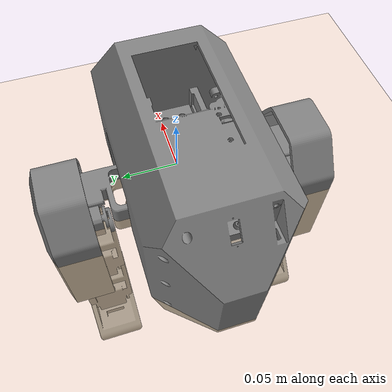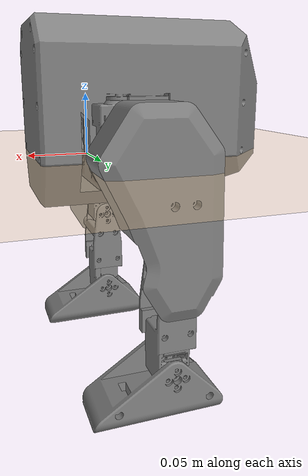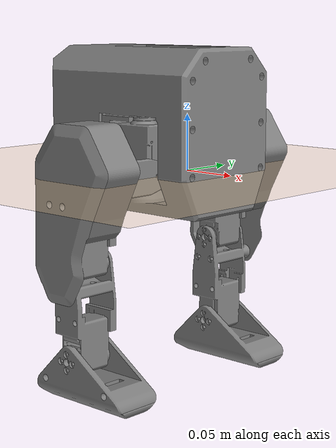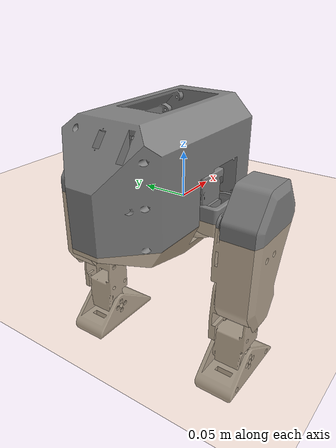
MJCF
<mujoco model="Open_Duck_Mini_Simplified">
    <compiler angle="radian" />
    <asset>
        <mesh name="Base_Link" file="meshes/Base_Link.stl" scale="0.001 0.001 0.001" />
        <mesh name="L_Thigh" file="meshes/L_Thigh.stl" scale="0.001 0.001 0.001" />
        <mesh name="L_Feet" file="meshes/L_Feet.stl" scale="0.001 0.001 0.001" />
        <mesh name="L_Shin" file="meshes/L_Shin.stl" scale="0.001 0.001 0.001" />
        <mesh name="L_hip_Roll2Pitch" file="meshes/L_hip_Roll2Pitch.stl" scale="0.001 0.001 0.001" />
        <mesh name="R_Thigh" file="meshes/R_Thigh.stl" scale="0.001 0.001 0.001" />
        <mesh name="R_hip_Roll2Pitch" file="meshes/R_hip_Roll2Pitch.stl" scale="0.001 0.001 0.001" />
        <mesh name="R_Shin" file="meshes/R_Shin.stl" scale="0.001 0.001 0.001" />
        <mesh name="L_hip_roll" file="meshes/L_hip_roll.stl" scale="0.001 0.001 0.001" />
        <mesh name="R_Feet" file="meshes/R_Feet.stl" scale="0.001 0.001 0.001" />
        <mesh name="R_hip_roll" file="meshes/R_hip_roll.stl" scale="0.001 0.001 0.001" />
    </asset>
    <worldbody>
        <light directional="true" pos="-0.5 0.5 3" dir="0 0 -1" />
        <geom pos="0 0 0" size="1 1 1" type="plane" rgba="1 0.83 0.61 0.5" />
        <body name="Base_Link" pos="0.0 0.0 0.0" euler="-0.0 0.0 -0.0">
            <geom name="Base_Link_geom" type="mesh" mesh="Base_Link" pos="0 0 0" euler="0 0 0" />
            <inertial mass="1.9684302519585641" pos="-0.03415259541905878 -2.340412795917269e-05 0.033010995393600875" fullinertia="0.005121034980046357 0.010241211931603489 0.008460065395761338 -4.522829560938849e-06 0.0003671159147792206 2.7747950485370167e-06" />
            <body name="L_hip_roll" pos="2.997602166487923e-16 -8.881784197001253e-18 -0.00020000000000120366" euler="-0.0 0.0 -0.0">
                <joint name="Base_Link_Revolute-1" type="hinge" axis="0.0 0.0 1.0" pos="-0.019000000000000298 0.03500000000000001 -0.013183999999998796" />
                <geom name="L_hip_roll_geom" type="mesh" mesh="L_hip_roll" pos="0 0 0" euler="0 0 0" />
                <inertial mass="0.1492490667349632" pos="-0.018876389938795472 0.03499999064295626 0.014424147719492868" fullinertia="5.607804841261871e-05 6.0621169396812564e-05 2.33776428469934e-05 -1.5399447721772125e-11 -4.965259153638467e-08 2.6498957935165886e-11" />
                <body name="L_hip_Roll2Pitch" pos="-2.997602166487923e-16 8.881784197001253e-18 0.00020000000000120366" euler="-0.0 0.0 -0.0">
                    <joint name="L_hip_roll_Revolute-4" type="hinge" axis="-1.0 0.0 0.0" pos="-0.0368 0.035 -7.4e-05" />
                    <geom name="L_hip_Roll2Pitch_geom" type="mesh" mesh="L_hip_Roll2Pitch" pos="0 0 0" euler="0 0 0" />
                    <inertial mass="0.10602697627624531" pos="-0.014818719999186636 0.07566773372494888 0.0011484913220371664" fullinertia="5.423033438519949e-05 3.7112765734958914e-05 7.38279563391466e-05 -4.154739662831365e-06 2.752004454686599e-07 -1.7824625751742564e-06" />
                    <body name="L_Thigh" pos="-0.0038000000000000347 5.329070518200751e-17 -1.35229501208034e-14" euler="1.8915628313209683e-13 0.0 -4.433649260499873e-39">
                        <joint name="L_hip_Roll2Pitch_Revolute-5" type="hinge" axis="0.0 1.0 -1.8915628313209683e-13" pos="-0.03125999999999997 0.07204999999999993 -7.400000000010575e-05" />
                        <geom name="L_Thigh_geom" type="mesh" mesh="L_Thigh" pos="0 0 0" euler="0 0 0" />
                        <inertial mass="0.25937750260452785" pos="-0.031032448659312515 0.1035388204097626 -0.021371552287224056" fullinertia="0.0004342529486771238 0.0005023439614216825 0.00021708001902644397 -8.27726818247285e-06 -7.213181055005393e-05 -1.5499027702165054e-05" />
                        <body name="L_Shin" pos="7.989164885202627e-15 0.0002499999999993019 -1.183742391143306e-14" euler="1.1636102701298318e-13 5.159039813671188e-52 2.2063555860711807e-38">
                            <joint name="L_Thigh_Revolute-8" type="hinge" axis="0.0 1.0 -3.0551731014508e-13" pos="-0.03506000000000795 0.0720499999999777 -0.0750739999999967" />
                            <geom name="L_Shin_geom" type="mesh" mesh="L_Shin" pos="0 0 0" euler="0 0 0" />
                            <inertial mass="0.0879638629775456" pos="-0.035062747188262 0.0903855262511664 -0.11582420003230887" fullinertia="7.936709900427646e-05 6.174524754732795e-05 3.072522125902017e-05 8.704058561309926e-09 1.1490857693420855e-08 -2.0329438509603343e-06" />
                            <body name="L_Feet" pos="8.024692021990632e-15 4.99999999892431e-05 -1.3089262203489816e-14" euler="1.1635137298073584e-13 -2.0512638384567958e-51 1.6029359342526113e-38">
                                <joint name="L_Shin_Revolute-10" type="hinge" axis="0.0 1.0 -4.2186868312581586e-13" pos="-0.03506000000001598 0.07224999999994501 -0.1573739999999921" />
                                <geom name="L_Feet_geom" type="mesh" mesh="L_Feet" pos="0 0 0" euler="0 0 0" />
                                <inertial mass="0.26831438389665163" pos="-0.024065628437512216 0.0908422823263262 -0.18097719336339996" fullinertia="7.498489913570529e-05 0.000221367829430008 0.00024945365153443747 -2.0601914103554346e-07 6.406580974771667e-06 7.343370472097901e-07" />
                            </body>
                        </body>
                    </body>
                </body>
            </body>
            <body name="R_hip_roll" pos="2.997602166487923e-16 0.0 -0.00020000000000120366" euler="-0.0 0.0 -0.0">
                <joint name="Base_Link_Revolute-2" type="hinge" axis="0.0 0.0 1.0" pos="-0.019000000000000298 -0.035 -0.013183999999998796" />
                <geom name="R_hip_roll_geom" type="mesh" mesh="R_hip_roll" pos="0 0 0" euler="0 0 0" />
                <inertial mass="0.1492490671539157" pos="-0.018876389988406708 -0.034999973867759014 0.01442414774490302" fullinertia="5.607804847161633e-05 6.06211695731254e-05 2.337764299167476e-05 5.642952350239181e-11 -4.9652523698044476e-08 -3.080540382787052e-11" />
                <body name="R_hip_Roll2Pitch" pos="-2.997602166487923e-16 0.0 0.00020000000000120366" euler="-0.0 0.0 -0.0">
                    <joint name="R_hip_roll_Revolute-3" type="hinge" axis="-1.0 0.0 0.0" pos="-0.0368 -0.035 -7.4e-05" />
                    <geom name="R_hip_Roll2Pitch_geom" type="mesh" mesh="R_hip_Roll2Pitch" pos="0 0 0" euler="0 0 0" />
                    <inertial mass="0.1060269762762521" pos="-0.014818719999185883 -0.07566773372495088 0.0011484913220383955" fullinertia="5.423033438520307e-05 3.7112765734963725e-05 7.382795633916351e-05 4.154739662834441e-06 2.7520044546570946e-07 1.7824625751777682e-06" />
                    <body name="R_Thigh" pos="0.0 0.0 0.0" euler="-0.0 0.0 -0.0">
                        <joint name="R_hip_Roll2Pitch_Revolute-6" type="hinge" axis="0.0 1.0 0.0" pos="-0.03506 -0.07205 -7.4e-05" />
                        <geom name="R_Thigh_geom" type="mesh" mesh="R_Thigh" pos="0 0 0" euler="0 0 0" />
                        <inertial mass="0.2593775026043108" pos="-0.031032448659315325 -0.10353882040975323 -0.02137155228720713" fullinertia="0.00043425294867627164 0.0005023439614215467 0.0002170800190252815 8.277268182463869e-06 -7.213181055006651e-05 1.5499027702213226e-05" />
                        <body name="R_Shin" pos="7.989164885202627e-15 -0.000249999999999293 -1.183941833460267e-14" euler="-1.1636102701298318e-13 0.0 -2.5573693711075005e-39">
                            <joint name="R_Thigh_Revolute-7" type="hinge" axis="0.0 1.0 1.1636102701298318e-13" pos="-0.03506000000000799 -0.07204999999999198 -0.07507399999999655" />
                            <geom name="R_Shin_geom" type="mesh" mesh="R_Shin" pos="0 0 0" euler="0 0 0" />
                            <inertial mass="0.08796386297749642" pos="-0.03506274718826922 -0.09038552625115734 -0.11582420003230408" fullinertia="7.936709900426562e-05 6.174524754731767e-05 3.072522125900183e-05 -8.70405857041505e-09 1.1490857689465163e-08 2.0329438509808126e-06" />
                            <body name="R_Feet" pos="8.024692021990632e-15 -4.9999999989251974e-05 -1.3017631899956232e-14" euler="-1.1635137298073587e-13 -2.975534375472387e-52 -7.684733088639688e-39">
                                <joint name="R_Shin_Revolute-9" type="hinge" axis="0.0 1.0 2.3271239999371905e-13" pos="-0.035060000000016016 -0.07224999999997483 -0.157373999999992" />
                                <geom name="R_Feet_geom" type="mesh" mesh="R_Feet" pos="0 0 0" euler="0 0 0" />
                                <inertial mass="0.2683143838971043" pos="-0.02406562843767208 -0.09084228232630734 -0.1809771933634124" fullinertia="7.49848991448334e-05 0.00022136782943110408 0.00024945365153563475 2.0601914177867484e-07 6.406580974430755e-06 -7.343370471775893e-07" />
                            </body>
                        </body>
                    </body>
                </body>
            </body>
        </body>
    </worldbody>
</mujoco>
